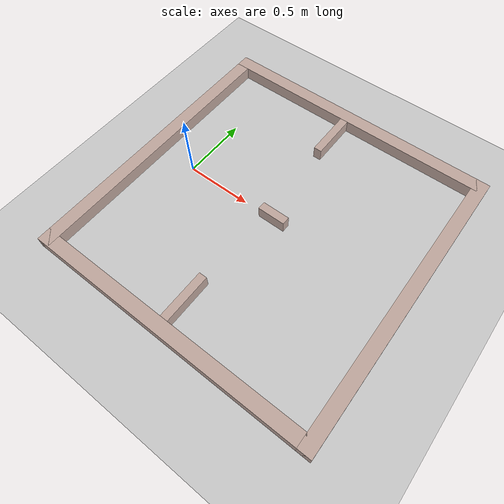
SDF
<sdf version="1.7">
 <world name="default">
  <light name="sun" type="directional">
   <pose>0 0 10 0 -0 0</pose>
   <diffuse>0.8 0.8 0.8 1</diffuse>
   <specular>0.2 0.2 0.2 1</specular>
   <attenuation>
    <range>1000</range>
    <constant>0.9</constant>
    <linear>0.01</linear>
    <quadratic>0.001</quadratic>
   </attenuation>
   <direction>-0.5 0.1 -0.9</direction>
   <spot><inner_angle>0</inner_angle><outer_angle>0</outer_angle><falloff>0</falloff></spot>
  </light>
  <model name="ground_plane">
   <static>1</static>
   <link name="link">
    <collision name="collision">
     <geometry><plane><normal>0 0 1</normal><size>100 100</size></plane></geometry>
     <surface>
      <contact><collide_bitmask>65535</collide_bitmask></contact>
      <friction><ode><mu>100</mu><mu2>50</mu2></ode></friction>
     </surface>
    </collision>
    <visual name="visual">
     <cast_shadows>0</cast_shadows>
     <geometry><plane><normal>0 0 1</normal><size>100 100</size></plane></geometry>
     <material>
      <script><uri>file://media/materials/scripts/gazebo.material</uri><name>Gazebo/Grey</name></script>
     </material>
    </visual>
   </link>
  </model>
  <gravity>0 0 -9.8</gravity>
  <magnetic_field>6e-06 2.3e-05 -4.2e-05</magnetic_field>
  <atmosphere type="adiabatic"/>
  <physics type="ode">
   <max_step_size>0.001</max_step_size>
   <real_time_factor>1</real_time_factor>
   <real_time_update_rate>1000</real_time_update_rate>
  </physics>
  <scene><ambient>0.4 0.4 0.4 1</ambient><background>0.7 0.7 0.7 1</background><shadows>1</shadows></scene>
  <audio><device>default</device></audio>
  <spherical_coordinates>
   <surface_model>EARTH_WGS84</surface_model>
   <latitude_deg>0</latitude_deg>
   <longitude_deg>0</longitude_deg>
   <elevation>0</elevation>
   <heading_deg>0</heading_deg>
  </spherical_coordinates>
  <model name="THIRDWORLD">
   <pose>0.725 0 0 0 -0 0</pose>
   <link name="Wall_0">
    <collision name="Wall_0_Collision">
     <geometry><box><size>2.2 0.1 0.1</size></box></geometry>
     <pose>0 0 0.05 0 -0 0</pose>
    </collision>
    <visual name="Wall_0_Visual">
     <pose>0 0 0.05 0 -0 0</pose>
     <geometry><box><size>2.2 0.1 0.1</size></box></geometry>
     <material>
      <script><uri>file://media/materials/scripts/gazebo.material</uri><name>Gazebo/Grey</name></script>
      <ambient>0.760784 0.662745 0.627451 1</ambient>
     </material>
     <meta><layer>0</layer></meta>
    </visual>
    <pose>-1.05 0 0 0 -0 1.5708</pose>
   </link>
   <link name="Wall_1">
    <collision name="Wall_1_Collision">
     <geometry><box><size>2.2 0.1 0.1</size></box></geometry>
     <pose>0 0 0.05 0 -0 0</pose>
    </collision>
    <visual name="Wall_1_Visual">
     <pose>0 0 0.05 0 -0 0</pose>
     <geometry><box><size>2.2 0.1 0.1</size></box></geometry>
     <material>
      <script><uri>file://media/materials/scripts/gazebo.material</uri><name>Gazebo/Grey</name></script>
      <ambient>0.760784 0.662745 0.627451 1</ambient>
     </material>
     <meta><layer>0</layer></meta>
    </visual>
    <pose>0 1.05 0 0 -0 0</pose>
   </link>
   <link name="Wall_10">
    <collision name="Wall_10_Collision">
     <geometry><box><size>0.36 0.06 0.1</size></box></geometry>
     <pose>0 0 0.05 0 -0 0</pose>
    </collision>
    <visual name="Wall_10_Visual">
     <pose>0 0 0.05 0 -0 0</pose>
     <geometry><box><size>0.36 0.06 0.1</size></box></geometry>
     <material>
      <script><uri>file://media/materials/scripts/gazebo.material</uri><name>Gazebo/Grey</name></script>
      <ambient>0.760784 0.662745 0.627451 1</ambient>
     </material>
     <meta><layer>0</layer></meta>
    </visual>
    <pose>-0.055 -0.82 0 0 -0 1.5708</pose>
   </link>
   <link name="Wall_12">
    <collision name="Wall_12_Collision">
     <geometry><box><size>0.21 0.06 0.1</size></box></geometry>
     <pose>0 0 0.05 0 -0 0</pose>
    </collision>
    <visual name="Wall_12_Visual">
     <pose>0 0 0.05 0 -0 0</pose>
     <geometry><box><size>0.21 0.06 0.1</size></box></geometry>
     <material>
      <script><uri>file://media/materials/scripts/gazebo.material</uri><name>Gazebo/Grey</name></script>
      <ambient>0.760784 0.662745 0.627451 1</ambient>
     </material>
     <meta><layer>0</layer></meta>
    </visual>
    <pose>0.02 0 0 0 -0 0</pose>
   </link>
   <link name="Wall_5">
    <collision name="Wall_5_Collision">
     <geometry><box><size>2.2 0.1 0.1</size></box></geometry>
     <pose>0 0 0.05 0 -0 0</pose>
    </collision>
    <visual name="Wall_5_Visual">
     <pose>0 0 0.05 0 -0 0</pose>
     <geometry><box><size>2.2 0.1 0.1</size></box></geometry>
     <material>
      <script><uri>file://media/materials/scripts/gazebo.material</uri><name>Gazebo/Grey</name></script>
      <ambient>0.760784 0.662745 0.627451 1</ambient>
     </material>
     <meta><layer>0</layer></meta>
    </visual>
    <pose>0 -1.05 0 0 -0 0</pose>
   </link>
   <link name="Wall_6">
    <collision name="Wall_6_Collision">
     <geometry><box><size>2.2 0.1 0.1</size></box></geometry>
     <pose>0 0 0.05 0 -0 0</pose>
    </collision>
    <visual name="Wall_6_Visual">
     <pose>0 0 0.05 0 -0 0</pose>
     <geometry><box><size>2.2 0.1 0.1</size></box></geometry>
     <material>
      <script><uri>file://media/materials/scripts/gazebo.material</uri><name>Gazebo/Grey</name></script>
      <ambient>0.760784 0.662745 0.627451 1</ambient>
     </material>
     <meta><layer>0</layer></meta>
    </visual>
    <pose>1.05 0 0 0 -0 1.5708</pose>
   </link>
   <link name="Wall_8">
    <collision name="Wall_8_Collision">
     <geometry><box><size>0.36 0.06 0.1</size></box></geometry>
     <pose>0 0 0.05 0 -0 0</pose>
    </collision>
    <visual name="Wall_8_Visual">
     <pose>0 0 0.05 0 -0 0</pose>
     <geometry><box><size>0.36 0.06 0.1</size></box></geometry>
     <material>
      <script><uri>file://media/materials/scripts/gazebo.material</uri><name>Gazebo/Grey</name></script>
      <ambient>0.760784 0.662745 0.627451 1</ambient>
     </material>
     <meta><layer>0</layer></meta>
    </visual>
    <pose>-0.055 0.82 0 0 -0 -1.5708</pose>
   </link>
   <static>1</static>
  </model>
 </world>
</sdf>
